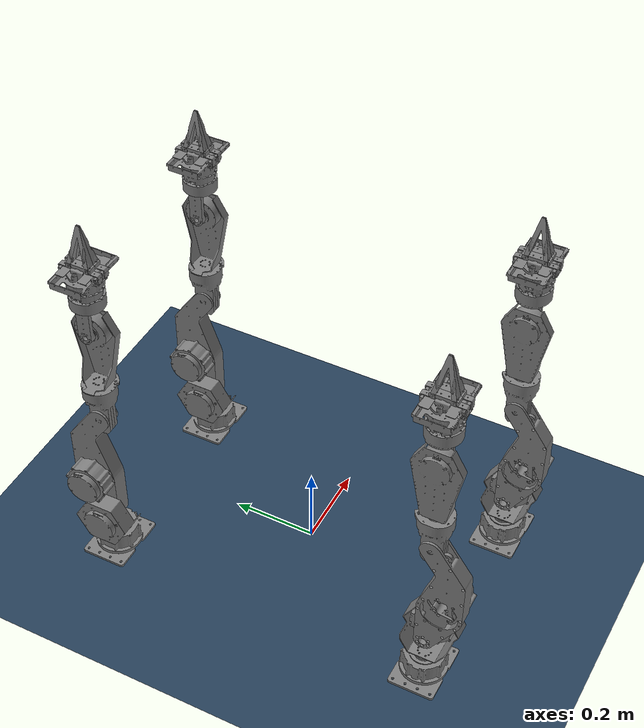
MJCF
<mujoco model="scene">
  <option timestep="0.005"/>
  <include file="meshes/quad_mevion_mujoco.xml"/>

  <default>
    <joint armature="0.05" damping="0.1" limited="true" frictionloss="0.1"/>
    <general dyntype="filterexact" dynprm="0.01"/>
  </default>

  <visual>
    <headlight diffuse="0.6 0.6 0.6"  ambient="0.3 0.3 0.3" specular="0 0 0"/>
    <rgba haze="0.15 0.25 0.35 1"/>
    <global azimuth="120" elevation="-20"/>
  </visual>

  <asset>
    <texture type="skybox" builtin="gradient" rgb1="0.3 0.5 0.7" rgb2="0 0 0" width="512"
        height="3072"/>
    <texture type="2d" name="groundplane" builtin="checker" mark="edge" rgb1="0.2 0.3 0.4"
        rgb2="0.1 0.2 0.3" markrgb="0.8 0.8 0.8" width="300" height="300"/>
    <material name="groundplane" texture="groundplane" texuniform="true" texrepeat="5 5"
        reflectance="0.2"/>
  </asset>

  <worldbody>
    <light pos="0 0 1.5" dir="0 0 -1" directional="true"/>
    <geom name="floor" pos="0 0 0.0" size="0 0 0.05" type="plane" material="groundplane"/>
  </worldbody>

  <actuator>
    <general name="RL_shoulder_yaw" joint="RL_shoulder_yaw" ctrllimited="true" ctrlrange="-60 60" biastype="none"/>
    <general name="RL_shoulder_pitch" joint="RL_shoulder_pitch" ctrllimited="true" ctrlrange="-60 60" biastype="none"/>
    <general name="RL_elbow_pitch" joint="RL_elbow_pitch" ctrllimited="true" ctrlrange="-60 60" biastype="none"/>
    <general name="RL_elbow_yaw" joint="RL_elbow_yaw" ctrllimited="true" ctrlrange="-17 17" biastype="none"/>
    <general name="RL_wrist_pitch" joint="RL_wrist_pitch" ctrllimited="true" ctrlrange="-17 17" biastype="none"/>
    <general name="RL_wrist_yaw" joint="RL_wrist_yaw" ctrllimited="true" ctrlrange="-17 17" biastype="none"/>
    <general name="RL_gripper_prismatic_left" joint="RL_gripper_prismatic_left" ctrllimited="true" ctrlrange="-12 12" biastype="none"/>
    <general name="RF_shoulder_yaw" joint="RF_shoulder_yaw" ctrllimited="true" ctrlrange="-60 60" biastype="none"/>
    <general name="RF_shoulder_pitch" joint="RF_shoulder_pitch" ctrllimited="true" ctrlrange="-60 60" biastype="none"/>
    <general name="RF_elbow_pitch" joint="RF_elbow_pitch" ctrllimited="true" ctrlrange="-60 60" biastype="none"/>
    <general name="RF_elbow_yaw" joint="RF_elbow_yaw" ctrllimited="true" ctrlrange="-17 17" biastype="none"/>
    <general name="RF_wrist_pitch" joint="RF_wrist_pitch" ctrllimited="true" ctrlrange="-17 17" biastype="none"/>
    <general name="RF_wrist_yaw" joint="RF_wrist_yaw" ctrllimited="true" ctrlrange="-17 17" biastype="none"/>
    <general name="RF_gripper_prismatic_left" joint="RF_gripper_prismatic_left" ctrllimited="true" ctrlrange="-12 12" biastype="none"/>
    <general name="LL_shoulder_yaw" joint="LL_shoulder_yaw" ctrllimited="true" ctrlrange="-60 60" biastype="none"/>
    <general name="LL_shoulder_pitch" joint="LL_shoulder_pitch" ctrllimited="true" ctrlrange="-60 60" biastype="none"/>
    <general name="LL_elbow_pitch" joint="LL_elbow_pitch" ctrllimited="true" ctrlrange="-60 60" biastype="none"/>
    <general name="LL_elbow_yaw" joint="LL_elbow_yaw" ctrllimited="true" ctrlrange="-17 17" biastype="none"/>
    <general name="LL_wrist_pitch" joint="LL_wrist_pitch" ctrllimited="true" ctrlrange="-17 17" biastype="none"/>
    <general name="LL_wrist_yaw" joint="LL_wrist_yaw" ctrllimited="true" ctrlrange="-17 17" biastype="none"/>
    <general name="LL_gripper_prismatic_left" joint="LL_gripper_prismatic_left" ctrllimited="true" ctrlrange="-12 12" biastype="none"/>
    <general name="LF_shoulder_yaw" joint="LF_shoulder_yaw" ctrllimited="true" ctrlrange="-60 60" biastype="none"/>
    <general name="LF_shoulder_pitch" joint="LF_shoulder_pitch" ctrllimited="true" ctrlrange="-60 60" biastype="none"/>
    <general name="LF_elbow_pitch" joint="LF_elbow_pitch" ctrllimited="true" ctrlrange="-60 60" biastype="none"/>
    <general name="LF_elbow_yaw" joint="LF_elbow_yaw" ctrllimited="true" ctrlrange="-17 17" biastype="none"/>
    <general name="LF_wrist_pitch" joint="LF_wrist_pitch" ctrllimited="true" ctrlrange="-17 17" biastype="none"/>
    <general name="LF_wrist_yaw" joint="LF_wrist_yaw" ctrllimited="true" ctrlrange="-17 17" biastype="none"/>
    <general name="LF_gripper_prismatic_left" joint="LF_gripper_prismatic_left" ctrllimited="true" ctrlrange="-12 12" biastype="none"/>
  </actuator>

  <equality>
    <joint joint1="RL_gripper_prismatic_left" joint2="RL_gripper_prismatic_right" solimp="0.95 0.99 0.001" solref="0.005 1"/>
    <joint joint1="RF_gripper_prismatic_left" joint2="RF_gripper_prismatic_right" solimp="0.95 0.99 0.001" solref="0.005 1"/>
    <joint joint1="LL_gripper_prismatic_left" joint2="LL_gripper_prismatic_right" solimp="0.95 0.99 0.001" solref="0.005 1"/>
    <joint joint1="LF_gripper_prismatic_left" joint2="LF_gripper_prismatic_right" solimp="0.95 0.99 0.001" solref="0.005 1"/>
  </equality>

  <keyframe>
    <key name="RESET"
      qpos="0.0 -0.91 2.69 0.0 0.63 1.57 0.0 0.0 0.0 -0.91 2.69 0.0 0.63 1.57 0.0 0.0 0.0 -0.91 2.69 0.0 0.63 1.57 0.0 0.0 0.0 -0.91 2.69 0.0 0.63 1.57 0.0 0.0"
      ctrl="0.0 -0.91 2.69 0.0 0.63 1.57 0.0 0.0 -0.91 2.69 0.0 0.63 1.57 0.0 0.0 -0.91 2.69 0.0 0.63 1.57 0.0 0.0 -0.91 2.69 0.0 0.63 1.57 0.0"/>
  </keyframe>

</mujoco>

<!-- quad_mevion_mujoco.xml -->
<mujoco model="dual_mevion">
  <compiler angle="radian"/>
  <asset>
    <mesh name="base_link" file="meshes/base_link.STL"/>
    <mesh name="shoulder_link" file="meshes/shoulder_link.STL"/>
    <mesh name="upper_link" file="meshes/upper_link.STL"/>
    <mesh name="lower1_link" file="meshes/lower1_link.STL"/>
    <mesh name="lower2_link" file="meshes/lower2_link.STL"/>
    <mesh name="wrist_link" file="meshes/wrist_link.STL"/>
    <mesh name="hand_link" file="meshes/hand_link.STL"/>
    <mesh name="gripper_link_left" file="meshes/gripper_link_left.STL"/>
    <mesh name="gripper_link_right" file="meshes/gripper_link_right.STL"/>
  </asset>
  <worldbody>
    <geom name="RL_base_link" pos="-0.225 -0.4 0" quat="0.7071 0 0 0.7071" type="mesh" mesh="base_link"/>
    <geom name="RF_base_link" pos="0.225 -0.4 0" quat="0.7071 0 0 0.7071" type="mesh" mesh="base_link"/>
    <geom name="LL_base_link" pos="-0.225 0.4 0" quat="0.7071 0 0 -0.7071" type="mesh" mesh="base_link"/>
    <geom name="LF_base_link" pos="0.225 0.4 0" quat="0.7071 0 0 -0.7071" type="mesh" mesh="base_link"/>
    <body name="RL_shoulder_link" pos="-0.225 -0.4 0.058" quat="0.7071 0 0 0.7071">
      <inertial pos="1.32392e-05 -0.0409446 0.053929" quat="0.447982 0.547549 0.449399 0.545476" mass="1.36441" diaginertia="0.00228538 0.00160981 0.00124826"/>
      <joint name="RL_shoulder_yaw" pos="0 0 0" axis="0 0 1" range="-1.58 1.58" actuatorfrcrange="-60 60"/>
      <geom type="mesh" mesh="shoulder_link"/>
      <body name="RL_upper_link" pos="0 -0.02 0.058">
        <inertial pos="-0.0277618 -0.00126864 0.125215" quat="0.706786 -0.0217636 -0.0216538 0.706761" mass="1.80094" diaginertia="0.00930308 0.00806249 0.00142522"/>
        <joint name="RL_shoulder_pitch" pos="0 0 0" axis="0 1 0" range="-0.91 1.45" actuatorfrcrange="-60 60"/>
        <geom type="mesh" mesh="upper_link"/>
        <body name="RL_lower1_link" pos="0 0.02 0.3">
          <inertial pos="0.000216391 0.000859939 0.0518106" quat="0.0180948 0.706629 0.0153262 0.707186" mass="0.759808" diaginertia="0.000468064 0.000439912 0.000385156"/>
          <joint name="RL_elbow_pitch" pos="0 0 0" axis="0 1 0" range="0.61 2.69" actuatorfrcrange="-60 60"/>
          <geom type="mesh" mesh="lower1_link"/>
          <body name="RL_lower2_link" pos="0 0 0.102">
            <inertial pos="-0.00027834 0.0123874 0.124866" quat="0.706594 -0.0238175 0.0233864 0.706832" mass="0.583366" diaginertia="0.00106826 0.000771949 0.000372275"/>
            <joint name="RL_elbow_yaw" pos="0 0 0" axis="0 0 1" range="-1.58 1.58" actuatorfrcrange="-17 17"/>
            <geom type="mesh" mesh="lower2_link"/>
            <body name="RL_wrist_link" pos="0 -0.011 0.148">
              <inertial pos="0 -0.00412316 0.0340021" quat="0.705803 -0.042917 0.042917 0.705803" mass="0.131493" diaginertia="7.5078e-05 7.37027e-05 1.4501e-05"/>
              <joint name="RL_wrist_pitch" pos="0 0 0" axis="0 1 0" range="-2.06 2.06" actuatorfrcrange="-17 17"/>
              <geom type="mesh" mesh="wrist_link"/>
              <body name="RL_hand_link" pos="0 0.011 0.072">
                <inertial pos="0.000159003 -0.000163984 0.0525705" quat="0.504603 0.495466 -0.502699 0.497174" mass="0.978434" diaginertia="0.000858095 0.000520846 0.000400564"/>
                <joint name="RL_wrist_yaw" pos="0 0 0" axis="0 0 1" range="-1.58 1.58" actuatorfrcrange="-17 17"/>
                <geom type="mesh" mesh="hand_link"/>
                <body name="RL_gripper_link_left" pos="0 0 0.1055">
                  <inertial pos="-1.32198e-08 0.0115784 0.00240128" quat="0.477749 0.521302 0.477749 0.521302" mass="0.122787" diaginertia="6.79822e-05 4.60214e-05 2.85978e-05"/>
                  <joint name="RL_gripper_prismatic_left" pos="0 0 0" axis="0 1 0" type="slide" range="0 0.0415" actuatorfrcrange="-12 12"/>
                  <geom type="mesh" mesh="gripper_link_left"/>
                </body>
                <body name="RL_gripper_link_right" pos="0 0 0.1055">
                  <inertial pos="1.32199e-08 -0.0115784 0.00240128" quat="0.521302 0.477749 0.521302 0.477749" mass="0.122787" diaginertia="6.79822e-05 4.60214e-05 2.85978e-05"/>
                  <joint name="RL_gripper_prismatic_right" pos="0 0 0" axis="0 -1 0" type="slide" range="0 0.0415" actuatorfrcrange="-12 12"/>
                  <geom type="mesh" mesh="gripper_link_right"/>
                </body>
              </body>
            </body>
          </body>
        </body>
      </body>
    </body>
    <body name="RF_shoulder_link" pos="0.225 -0.4 0.058" quat="0.7071 0 0 0.7071">
      <inertial pos="1.32392e-05 -0.0409446 0.053929" quat="0.447982 0.547549 0.449399 0.545476" mass="1.36441" diaginertia="0.00228538 0.00160981 0.00124826"/>
      <joint name="RF_shoulder_yaw" pos="0 0 0" axis="0 0 1" range="-1.58 1.58" actuatorfrcrange="-60 60"/>
      <geom type="mesh" mesh="shoulder_link"/>
      <body name="RF_upper_link" pos="0 -0.02 0.058">
        <inertial pos="-0.0277618 -0.00126864 0.125215" quat="0.706786 -0.0217636 -0.0216538 0.706761" mass="1.80094" diaginertia="0.00930308 0.00806249 0.00142522"/>
        <joint name="RF_shoulder_pitch" pos="0 0 0" axis="0 1 0" range="-0.91 1.45" actuatorfrcrange="-60 60"/>
        <geom type="mesh" mesh="upper_link"/>
        <body name="RF_lower1_link" pos="0 0.02 0.3">
          <inertial pos="0.000216391 0.000859939 0.0518106" quat="0.0180948 0.706629 0.0153262 0.707186" mass="0.759808" diaginertia="0.000468064 0.000439912 0.000385156"/>
          <joint name="RF_elbow_pitch" pos="0 0 0" axis="0 1 0" range="0.61 2.69" actuatorfrcrange="-60 60"/>
          <geom type="mesh" mesh="lower1_link"/>
          <body name="RF_lower2_link" pos="0 0 0.102">
            <inertial pos="-0.00027834 0.0123874 0.124866" quat="0.706594 -0.0238175 0.0233864 0.706832" mass="0.583366" diaginertia="0.00106826 0.000771949 0.000372275"/>
            <joint name="RF_elbow_yaw" pos="0 0 0" axis="0 0 1" range="-1.58 1.58" actuatorfrcrange="-17 17"/>
            <geom type="mesh" mesh="lower2_link"/>
            <body name="RF_wrist_link" pos="0 -0.011 0.148">
              <inertial pos="0 -0.00412316 0.0340021" quat="0.705803 -0.042917 0.042917 0.705803" mass="0.131493" diaginertia="7.5078e-05 7.37027e-05 1.4501e-05"/>
              <joint name="RF_wrist_pitch" pos="0 0 0" axis="0 1 0" range="-2.06 2.06" actuatorfrcrange="-17 17"/>
              <geom type="mesh" mesh="wrist_link"/>
              <body name="RF_hand_link" pos="0 0.011 0.072">
                <inertial pos="0.000159003 -0.000163984 0.0525705" quat="0.504603 0.495466 -0.502699 0.497174" mass="0.978434" diaginertia="0.000858095 0.000520846 0.000400564"/>
                <joint name="RF_wrist_yaw" pos="0 0 0" axis="0 0 1" range="-1.58 1.58" actuatorfrcrange="-17 17"/>
                <geom type="mesh" mesh="hand_link"/>
                <body name="RF_gripper_link_left" pos="0 0 0.1055">
                  <inertial pos="-1.32198e-08 0.0115784 0.00240128" quat="0.477749 0.521302 0.477749 0.521302" mass="0.122787" diaginertia="6.79822e-05 4.60214e-05 2.85978e-05"/>
                  <joint name="RF_gripper_prismatic_left" pos="0 0 0" axis="0 1 0" type="slide" range="0 0.0415" actuatorfrcrange="-12 12"/>
                  <geom type="mesh" mesh="gripper_link_left"/>
                </body>
                <body name="RF_gripper_link_right" pos="0 0 0.1055">
                  <inertial pos="1.32199e-08 -0.0115784 0.00240128" quat="0.521302 0.477749 0.521302 0.477749" mass="0.122787" diaginertia="6.79822e-05 4.60214e-05 2.85978e-05"/>
                  <joint name="RF_gripper_prismatic_right" pos="0 0 0" axis="0 -1 0" type="slide" range="0 0.0415" actuatorfrcrange="-12 12"/>
                  <geom type="mesh" mesh="gripper_link_right"/>
                </body>
              </body>
            </body>
          </body>
        </body>
      </body>
    </body>
    <body name="LL_shoulder_link" pos="-0.225 0.4 0.058" quat="0.7071 0 0 -0.7071">
      <inertial pos="1.32392e-05 -0.0409446 0.053929" quat="0.447982 0.547549 0.449399 0.545476" mass="1.36441" diaginertia="0.00228538 0.00160981 0.00124826"/>
      <joint name="LL_shoulder_yaw" pos="0 0 0" axis="0 0 1" range="-1.58 1.58" actuatorfrcrange="-60 60"/>
      <geom type="mesh" mesh="shoulder_link"/>
      <body name="LL_upper_link" pos="0 -0.02 0.058">
        <inertial pos="-0.0277618 -0.00126864 0.125215" quat="0.706786 -0.0217636 -0.0216538 0.706761" mass="1.80094" diaginertia="0.00930308 0.00806249 0.00142522"/>
        <joint name="LL_shoulder_pitch" pos="0 0 0" axis="0 1 0" range="-0.91 1.45" actuatorfrcrange="-60 60"/>
        <geom type="mesh" mesh="upper_link"/>
        <body name="LL_lower1_link" pos="0 0.02 0.3">
          <inertial pos="0.000216391 0.000859939 0.0518106" quat="0.0180948 0.706629 0.0153262 0.707186" mass="0.759808" diaginertia="0.000468064 0.000439912 0.000385156"/>
          <joint name="LL_elbow_pitch" pos="0 0 0" axis="0 1 0" range="0.61 2.69" actuatorfrcrange="-60 60"/>
          <geom type="mesh" mesh="lower1_link"/>
          <body name="LL_lower2_link" pos="0 0 0.102">
            <inertial pos="-0.00027834 0.0123874 0.124866" quat="0.706594 -0.0238175 0.0233864 0.706832" mass="0.583366" diaginertia="0.00106826 0.000771949 0.000372275"/>
            <joint name="LL_elbow_yaw" pos="0 0 0" axis="0 0 1" range="-1.58 1.58" actuatorfrcrange="-17 17"/>
            <geom type="mesh" mesh="lower2_link"/>
            <body name="LL_wrist_link" pos="0 -0.011 0.148">
              <inertial pos="0 -0.00412316 0.0340021" quat="0.705803 -0.042917 0.042917 0.705803" mass="0.131493" diaginertia="7.5078e-05 7.37027e-05 1.4501e-05"/>
              <joint name="LL_wrist_pitch" pos="0 0 0" axis="0 1 0" range="-2.06 2.06" actuatorfrcrange="-17 17"/>
              <geom type="mesh" mesh="wrist_link"/>
              <body name="LL_hand_link" pos="0 0.011 0.072">
                <inertial pos="0.000159003 -0.000163984 0.0525705" quat="0.504603 0.495466 -0.502699 0.497174" mass="0.978434" diaginertia="0.000858095 0.000520846 0.000400564"/>
                <joint name="LL_wrist_yaw" pos="0 0 0" axis="0 0 1" range="-1.58 1.58" actuatorfrcrange="-17 17"/>
                <geom type="mesh" mesh="hand_link"/>
                <body name="LL_gripper_link_left" pos="0 0 0.1055">
                  <inertial pos="-1.32198e-08 0.0115784 0.00240128" quat="0.477749 0.521302 0.477749 0.521302" mass="0.122787" diaginertia="6.79822e-05 4.60214e-05 2.85978e-05"/>
                  <joint name="LL_gripper_prismatic_left" pos="0 0 0" axis="0 1 0" type="slide" range="0 0.0415" actuatorfrcrange="-12 12"/>
                  <geom type="mesh" mesh="gripper_link_left"/>
                </body>
                <body name="LL_gripper_link_right" pos="0 0 0.1055">
                  <inertial pos="1.32199e-08 -0.0115784 0.00240128" quat="0.521302 0.477749 0.521302 0.477749" mass="0.122787" diaginertia="6.79822e-05 4.60214e-05 2.85978e-05"/>
                  <joint name="LL_gripper_prismatic_right" pos="0 0 0" axis="0 -1 0" type="slide" range="0 0.0415" actuatorfrcrange="-12 12"/>
                  <geom type="mesh" mesh="gripper_link_right"/>
                </body>
              </body>
            </body>
          </body>
        </body>
      </body>
    </body>
    <body name="LF_shoulder_link" pos="0.225 0.4 0.058" quat="0.7071 0 0 -0.7071">
      <inertial pos="1.32392e-05 -0.0409446 0.053929" quat="0.447982 0.547549 0.449399 0.545476" mass="1.36441" diaginertia="0.00228538 0.00160981 0.00124826"/>
      <joint name="LF_shoulder_yaw" pos="0 0 0" axis="0 0 1" range="-1.58 1.58" actuatorfrcrange="-60 60"/>
      <geom type="mesh" mesh="shoulder_link"/>
      <body name="LF_upper_link" pos="0 -0.02 0.058">
        <inertial pos="-0.0277618 -0.00126864 0.125215" quat="0.706786 -0.0217636 -0.0216538 0.706761" mass="1.80094" diaginertia="0.00930308 0.00806249 0.00142522"/>
        <joint name="LF_shoulder_pitch" pos="0 0 0" axis="0 1 0" range="-0.91 1.45" actuatorfrcrange="-60 60"/>
        <geom type="mesh" mesh="upper_link"/>
        <body name="LF_lower1_link" pos="0 0.02 0.3">
          <inertial pos="0.000216391 0.000859939 0.0518106" quat="0.0180948 0.706629 0.0153262 0.707186" mass="0.759808" diaginertia="0.000468064 0.000439912 0.000385156"/>
          <joint name="LF_elbow_pitch" pos="0 0 0" axis="0 1 0" range="0.61 2.69" actuatorfrcrange="-60 60"/>
          <geom type="mesh" mesh="lower1_link"/>
          <body name="LF_lower2_link" pos="0 0 0.102">
            <inertial pos="-0.00027834 0.0123874 0.124866" quat="0.706594 -0.0238175 0.0233864 0.706832" mass="0.583366" diaginertia="0.00106826 0.000771949 0.000372275"/>
            <joint name="LF_elbow_yaw" pos="0 0 0" axis="0 0 1" range="-1.58 1.58" actuatorfrcrange="-17 17"/>
            <geom type="mesh" mesh="lower2_link"/>
            <body name="LF_wrist_link" pos="0 -0.011 0.148">
              <inertial pos="0 -0.00412316 0.0340021" quat="0.705803 -0.042917 0.042917 0.705803" mass="0.131493" diaginertia="7.5078e-05 7.37027e-05 1.4501e-05"/>
              <joint name="LF_wrist_pitch" pos="0 0 0" axis="0 1 0" range="-2.06 2.06" actuatorfrcrange="-17 17"/>
              <geom type="mesh" mesh="wrist_link"/>
              <body name="LF_hand_link" pos="0 0.011 0.072">
                <inertial pos="0.000159003 -0.000163984 0.0525705" quat="0.504603 0.495466 -0.502699 0.497174" mass="0.978434" diaginertia="0.000858095 0.000520846 0.000400564"/>
                <joint name="LF_wrist_yaw" pos="0 0 0" axis="0 0 1" range="-1.58 1.58" actuatorfrcrange="-17 17"/>
                <geom type="mesh" mesh="hand_link"/>
                <body name="LF_gripper_link_left" pos="0 0 0.1055">
                  <inertial pos="-1.32198e-08 0.0115784 0.00240128" quat="0.477749 0.521302 0.477749 0.521302" mass="0.122787" diaginertia="6.79822e-05 4.60214e-05 2.85978e-05"/>
                  <joint name="LF_gripper_prismatic_left" pos="0 0 0" axis="0 1 0" type="slide" range="0 0.0415" actuatorfrcrange="-12 12"/>
                  <geom type="mesh" mesh="gripper_link_left"/>
                </body>
                <body name="LF_gripper_link_right" pos="0 0 0.1055">
                  <inertial pos="1.32199e-08 -0.0115784 0.00240128" quat="0.521302 0.477749 0.521302 0.477749" mass="0.122787" diaginertia="6.79822e-05 4.60214e-05 2.85978e-05"/>
                  <joint name="LF_gripper_prismatic_right" pos="0 0 0" axis="0 -1 0" type="slide" range="0 0.0415" actuatorfrcrange="-12 12"/>
                  <geom type="mesh" mesh="gripper_link_right"/>
                </body>
              </body>
            </body>
          </body>
        </body>
      </body>
    </body>
  </worldbody>
</mujoco>
